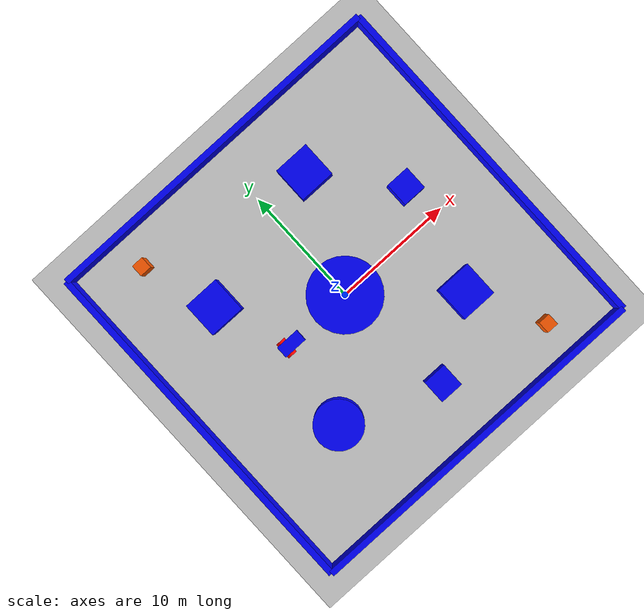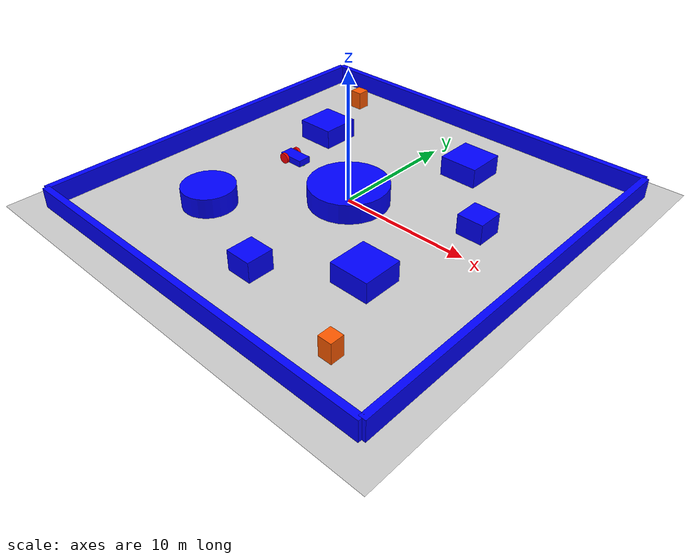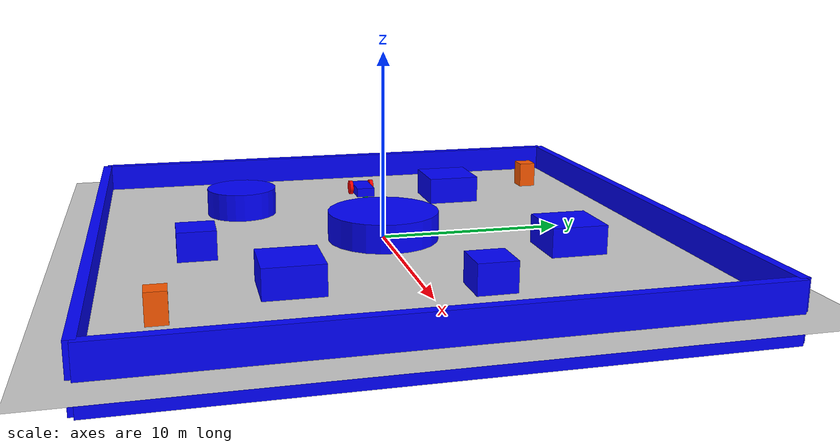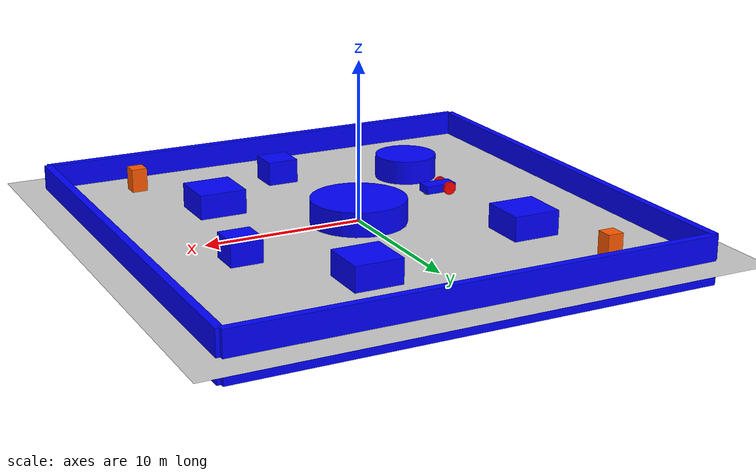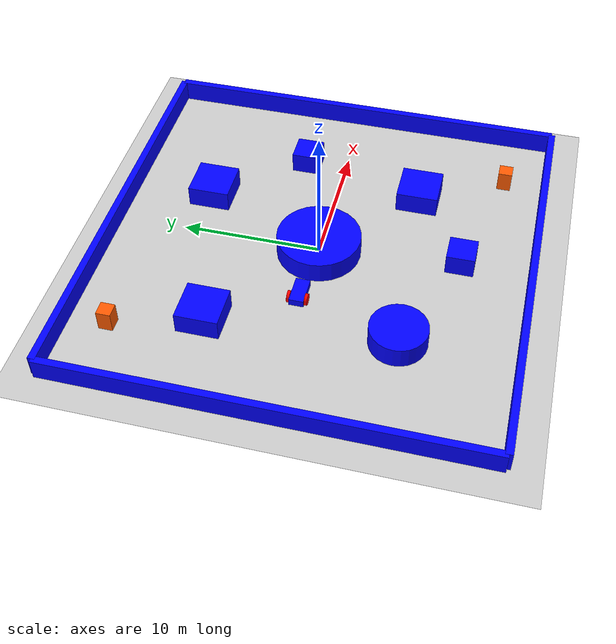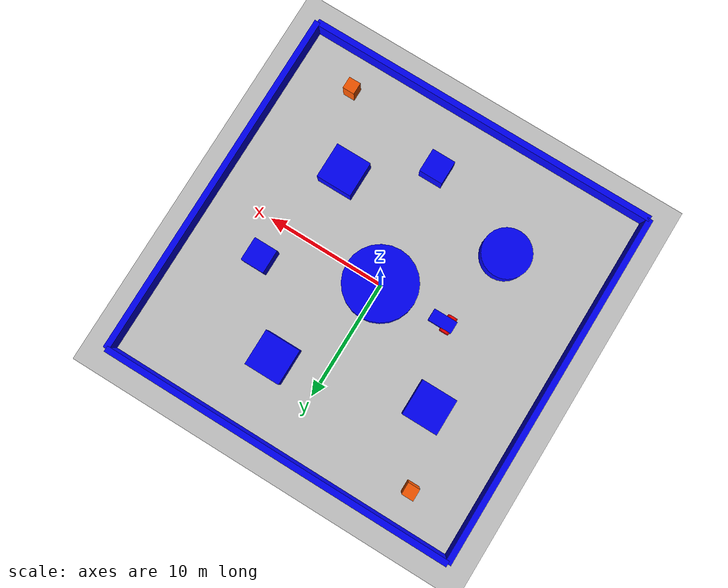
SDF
<sdf version="1.8">
 <world name="sim_world">
  <model name="environment">
   <static>true</static>
   <link name="ground">
    <collision name="collision"><geometry><plane><normal>0 0 1</normal></plane></geometry></collision>
    <visual name="visual">
     <geometry><plane><normal>0 0 1</normal><size>100 100</size></plane></geometry>
     <material>
      <ambient>0.8 0.8 0.8 1</ambient>
      <diffuse>0.8 0.8 0.8 1</diffuse>
      <specular>0.8 0.8 0.8 1</specular>
     </material>
    </visual>
   </link>
  </model>
  <model name="wall">
   <static>true</static>
   <pose>0 -15 0 0 0 0</pose>
   <link name="box">
    <visual name="visual">
     <geometry><box><size>30 0.5 3.0</size></box></geometry>
     <material>
      <ambient>0.0 0.0 1.0 1</ambient>
      <diffuse>0.0 0.0 1.0 1</diffuse>
      <specular>0.0 0.0 1.0 1</specular>
     </material>
    </visual>
    <collision name="collision"><geometry><box><size>30 0.5 3.0</size></box></geometry></collision>
   </link>
  </model>
  <model name="wall1">
   <static>true</static>
   <pose>0 15 0 0 0 0</pose>
   <link name="box">
    <visual name="visual">
     <geometry><box><size>30 0.5 3.0</size></box></geometry>
     <material>
      <ambient>0.0 0.0 1.0 1</ambient>
      <diffuse>0.0 0.0 1.0 1</diffuse>
      <specular>0.0 0.0 1.0 1</specular>
     </material>
    </visual>
    <collision name="collision"><geometry><box><size>30 0.5 3.0</size></box></geometry></collision>
   </link>
  </model>
  <model name="wall2">
   <static>true</static>
   <pose>15 0 0 0 0 0</pose>
   <link name="box">
    <visual name="visual">
     <geometry><box><size>0.5 30 3.0</size></box></geometry>
     <material>
      <ambient>0.0 0.0 1.0 1</ambient>
      <diffuse>0.0 0.0 1.0 1</diffuse>
      <specular>0.0 0.0 1.0 1</specular>
     </material>
    </visual>
    <collision name="collision"><geometry><box><size>0.5 30 3.0</size></box></geometry></collision>
   </link>
  </model>
  <model name="wall3">
   <static>true</static>
   <pose>-15 0 0 0 0 0</pose>
   <link name="box">
    <visual name="visual">
     <geometry><box><size>0.5 30 3.0</size></box></geometry>
     <material>
      <ambient>0.0 0.0 1.0 1</ambient>
      <diffuse>0.0 0.0 1.0 1</diffuse>
      <specular>0.0 0.0 1.0 1</specular>
     </material>
    </visual>
    <collision name="collision"><geometry><box><size>0.5 30 3.0</size></box></geometry></collision>
   </link>
  </model>
  <model name="box1">
   <static>true</static>
   <pose>7 -6 0 0 0 0</pose>
   <link name="box">
    <visual name="visual">
     <geometry><box><size>3 3 3.0</size></box></geometry>
     <material>
      <ambient>0.0 0.0 1.0 1</ambient>
      <diffuse>0.0 0.0 1.0 1</diffuse>
      <specular>0.0 0.0 1.0 1</specular>
     </material>
    </visual>
    <collision name="collision"><geometry><box><size>3 3 3.0</size></box></geometry></collision>
   </link>
  </model>
  <model name="box2">
   <static>true</static>
   <pose>-8 6 0 0 0 0</pose>
   <link name="box">
    <visual name="visual">
     <geometry><box><size>3 3 3.0</size></box></geometry>
     <material>
      <ambient>0.0 0.0 1.0 1</ambient>
      <diffuse>0.0 0.0 1.0 1</diffuse>
      <specular>0.0 0.0 1.0 1</specular>
     </material>
    </visual>
    <collision name="collision"><geometry><box><size>3 3 3.0</size></box></geometry></collision>
   </link>
  </model>
  <model name="box3">
   <static>true</static>
   <pose>4 9 0 0 0 0</pose>
   <link name="box">
    <visual name="visual">
     <geometry><box><size>3 3 3.0</size></box></geometry>
     <material>
      <ambient>0.0 0.0 1.0 1</ambient>
      <diffuse>0.0 0.0 1.0 1</diffuse>
      <specular>0.0 0.0 1.0 1</specular>
     </material>
    </visual>
    <collision name="collision"><geometry><box><size>3 3 3.0</size></box></geometry></collision>
   </link>
  </model>
  <model name="box4">
   <static>true</static>
   <pose>9 3 0 0 0 0</pose>
   <link name="box">
    <visual name="visual">
     <geometry><box><size>2 2 3.0</size></box></geometry>
     <material>
      <ambient>0.0 0.0 1.0 1</ambient>
      <diffuse>0.0 0.0 1.0 1</diffuse>
      <specular>0.0 0.0 1.0 1</specular>
     </material>
    </visual>
    <collision name="collision"><geometry><box><size>2 2 3.0</size></box></geometry></collision>
   </link>
  </model>
  <model name="box5">
   <static>true</static>
   <pose>1 -10 0 0 0 0</pose>
   <link name="box">
    <visual name="visual">
     <geometry><box><size>2 2 3.0</size></box></geometry>
     <material>
      <ambient>0.0 0.0 1.0 1</ambient>
      <diffuse>0.0 0.0 1.0 1</diffuse>
      <specular>0.0 0.0 1.0 1</specular>
     </material>
    </visual>
    <collision name="collision"><geometry><box><size>2 2 3.0</size></box></geometry></collision>
   </link>
  </model>
  <model name="cyl1">
   <static>true</static>
   <link name="box">
    <visual name="visual">
     <geometry><cylinder><radius>3</radius><length>3</length></cylinder></geometry>
     <material>
      <ambient>0.0 0.0 1.0 1</ambient>
      <diffuse>0.0 0.0 1.0 1</diffuse>
      <specular>0.0 0.0 1.0 1</specular>
     </material>
    </visual>
    <collision name="collision">
     <geometry><cylinder><radius>3</radius><length>3</length></cylinder></geometry>
    </collision>
   </link>
  </model>
  <model name="cyl2">
   <static>true</static>
   <pose>-7 -7 0 0 0 0</pose>
   <link name="box">
    <visual name="visual">
     <geometry><cylinder><radius>2</radius><length>3</length></cylinder></geometry>
     <material>
      <ambient>0.0 0.0 1.0 1</ambient>
      <diffuse>0.0 0.0 1.0 1</diffuse>
      <specular>0.0 0.0 1.0 1</specular>
     </material>
    </visual>
    <collision name="collision">
     <geometry><cylinder><radius>2</radius><length>3</length></cylinder></geometry>
    </collision>
   </link>
  </model>
  <model name="moving_obstacle_top" canonical_link="body">
   <static>false</static>
   <pose>-10 12 0.75 0 0 0</pose>
   <link name="body">
    <gravity>false</gravity>
    <inertial><mass>20</mass><inertia><ixx>5.4167</ixx><iyy>5.4167</iyy><izz>3.3333</izz></inertia></inertial>
    <visual name="visual">
     <geometry><box><size>1 1 1.5</size></box></geometry>
     <material><ambient>1 0.35 0 1</ambient><diffuse>1 0.35 0 1</diffuse></material>
    </visual>
    <collision name="collision"><geometry><box><size>1 1 1.5</size></box></geometry></collision>
   </link>
   <plugin filename="ignition-gazebo-velocity-control-system" name="ignition::gazebo::systems::VelocityControl">
    <topic>/moving_obstacle_top/cmd_vel</topic>
   </plugin>
   <plugin filename="libignition-gazebo-pose-publisher-system.so" name="ignition::gazebo::systems::PosePublisher">
    <topicName>/moving_obstacle_top/pose</topicName>
    <publish_model_pose>true</publish_model_pose>
    <publish_link_pose>true</publish_link_pose>
    <use_pose_vector_msg>true</use_pose_vector_msg>
   </plugin>
  </model>
  <model name="moving_obstacle_bottom" canonical_link="body">
   <static>false</static>
   <pose>10 -12 0.75 0 0 0</pose>
   <link name="body">
    <gravity>false</gravity>
    <inertial><mass>20</mass><inertia><ixx>5.4167</ixx><iyy>5.4167</iyy><izz>3.3333</izz></inertia></inertial>
    <visual name="visual">
     <geometry><box><size>1 1 1.5</size></box></geometry>
     <material><ambient>1 0.35 0 1</ambient><diffuse>1 0.35 0 1</diffuse></material>
    </visual>
    <collision name="collision"><geometry><box><size>1 1 1.5</size></box></geometry></collision>
   </link>
   <plugin filename="ignition-gazebo-velocity-control-system" name="ignition::gazebo::systems::VelocityControl">
    <topic>/moving_obstacle_bottom/cmd_vel</topic>
   </plugin>
   <plugin filename="libignition-gazebo-pose-publisher-system.so" name="ignition::gazebo::systems::PosePublisher">
    <topicName>/moving_obstacle_bottom/pose</topicName>
    <publish_model_pose>true</publish_model_pose>
    <publish_link_pose>true</publish_link_pose>
    <use_pose_vector_msg>true</use_pose_vector_msg>
   </plugin>
  </model>
  <model name="robot" canonical_link="chassis">
   <pose relative_to="world">-6 0 1 0 0 0</pose>
   <frame name="lidar_frame" attached_to="chassis"><pose>0.8 0 0.5 0 0 0</pose></frame>
   <frame name="camera_frame" attached_to="chassis"><pose>0.8 0 0.5 0 0 0</pose></frame>
   <frame name="camera_optical_frame" attached_to="camera_frame"><pose>0 0 0 -1.57 0 -1.57</pose></frame>
   <link name="chassis">
    <pose relative_to="__model__">0.5 0 0.4 0 0 0</pose>
    <inertial>
     <mass>1.14395</mass>
     <inertia>
      <ixx>0.126164</ixx>
      <ixy>0</ixy>
      <ixz>0</ixz>
      <iyy>0.416519</iyy>
      <iyz>0</iyz>
      <izz>0.481014</izz>
     </inertia>
    </inertial>
    <visual name="visual">
     <geometry><box><size>2.0 1.0 0.5</size></box></geometry>
     <material>
      <ambient>0.0 0.0 1.0 1</ambient>
      <diffuse>0.0 0.0 1.0 1</diffuse>
      <specular>0.0 0.0 1.0 1</specular>
     </material>
    </visual>
    <collision name="collision"><geometry><box><size>2.0 1.0 0.5</size></box></geometry></collision>
    <sensor name="imu_sensor" type="imu">
     <always_on>1</always_on>
     <update_rate>1</update_rate>
     <visualize>true</visualize>
     <topic>imu</topic>
    </sensor>
    <sensor name="lidar" type="gpu_lidar">
     <pose relative_to="lidar_frame">0 0 0 0 0 0</pose>
     <topic>lidar</topic>
     <update_rate>10</update_rate>
     <ray>
      <scan>
       <horizontal>
        <samples>256</samples>
        <resolution>1</resolution>
        <min_angle>-3.14159</min_angle>
        <max_angle>3.14159</max_angle>
       </horizontal>
       <vertical>
        <samples>1</samples>
        <resolution>1</resolution>
        <min_angle>0</min_angle>
        <max_angle>0</max_angle>
       </vertical>
      </scan>
      <range><min>0.08</min><max>20.0</max><resolution>0.01</resolution></range>
     </ray>
     <alwaysOn>1</alwaysOn>
     <visualize>true</visualize>
    </sensor>
    <sensor name="camera" type="camera">
     <pose relative_to="camera_frame">0 0 0 0 0 0</pose>
     <camera>
      <horizontal_fov>1.047</horizontal_fov>
      <image><width>320</width><height>240</height></image>
      <clip><near>0.1</near><far>100</far></clip>
     </camera>
     <always_on>1</always_on>
     <update_rate>30</update_rate>
     <visualize>true</visualize>
     <topic>camera</topic>
    </sensor>
   </link>
   <link name="left_wheel">
    <pose relative_to="chassis">-0.5 0.6 0 -1.5707 0 0</pose>
    <inertial>
     <mass>2</mass>
     <inertia><ixx>0.145833</ixx><ixy>0</ixy><ixz>0</ixz><iyy>0.145833</iyy><iyz>0</iyz><izz>0.125</izz></inertia>
    </inertial>
    <visual name="visual">
     <geometry><cylinder><radius>0.4</radius><length>0.2</length></cylinder></geometry>
     <material>
      <ambient>1.0 0.0 0.0 1</ambient>
      <diffuse>1.0 0.0 0.0 1</diffuse>
      <specular>1.0 0.0 0.0 1</specular>
     </material>
    </visual>
    <collision name="collision">
     <geometry><cylinder><radius>0.4</radius><length>0.2</length></cylinder></geometry>
    </collision>
   </link>
   <link name="right_wheel">
    <pose relative_to="chassis">-0.5 -0.6 0 -1.5707 0 0</pose>
    <inertial>
     <mass>1</mass>
     <inertia><ixx>0.145833</ixx><ixy>0</ixy><ixz>0</ixz><iyy>0.145833</iyy><iyz>0</iyz><izz>0.125</izz></inertia>
    </inertial>
    <visual name="visual">
     <geometry><cylinder><radius>0.4</radius><length>0.2</length></cylinder></geometry>
     <material>
      <ambient>1.0 0.0 0.0 1</ambient>
      <diffuse>1.0 0.0 0.0 1</diffuse>
      <specular>1.0 0.0 0.0 1</specular>
     </material>
    </visual>
    <collision name="collision">
     <geometry><cylinder><radius>0.4</radius><length>0.2</length></cylinder></geometry>
    </collision>
   </link>
   <frame name="caster_frame" attached_to="chassis"><pose>0.8 0 -0.2 0 0 0</pose></frame>
   <link name="caster">
    <pose relative_to="caster_frame"/>
    <inertial>
     <mass>1</mass>
     <inertia><ixx>0.1</ixx><ixy>0</ixy><ixz>0</ixz><iyy>0.1</iyy><iyz>0</iyz><izz>0.1</izz></inertia>
    </inertial>
    <visual name="visual">
     <geometry><sphere><radius>0.2</radius></sphere></geometry>
     <material>
      <ambient>0.0 1 0.0 1</ambient>
      <diffuse>0.0 1 0.0 1</diffuse>
      <specular>0.0 1 0.0 1</specular>
     </material>
    </visual>
    <collision name="collision"><geometry><sphere><radius>0.2</radius></sphere></geometry></collision>
   </link>
   <joint name="left_wheel_joint" type="revolute">
    <pose relative_to="left_wheel"/>
    <parent>chassis</parent>
    <child>left_wheel</child>
    <axis>
     <xyz expressed_in="__model__">0 1 0</xyz>
     <limit><lower>-1.79769e+308</lower><upper>1.79769e+308</upper></limit>
    </axis>
   </joint>
   <joint name="right_wheel_joint" type="revolute">
    <pose relative_to="right_wheel"/>
    <parent>chassis</parent>
    <child>right_wheel</child>
    <axis>
     <xyz expressed_in="__model__">0 1 0</xyz>
     <limit><lower>-1.79769e+308</lower><upper>1.79769e+308</upper></limit>
    </axis>
   </joint>
   <joint name="caster_wheel" type="ball"><parent>chassis</parent><child>caster</child></joint>
   <plugin filename="ignition-gazebo-diff-drive-system" name="ignition::gazebo::systems::DiffDrive">
    <left_joint>left_wheel_joint</left_joint>
    <right_joint>right_wheel_joint</right_joint>
    <wheel_separation>1.2</wheel_separation>
    <wheel_radius>0.4</wheel_radius>
    <odom_publish_frequency>1</odom_publish_frequency>
    <topic>cmd_vel</topic>
   </plugin>
   <plugin filename="libignition-gazebo-pose-publisher-system.so" name="ignition::gazebo::systems::PosePublisher">
    <topicName>tf</topicName>
    <publish_link_pose>true</publish_link_pose>
    <publish_sensor_pose>true</publish_sensor_pose>
    <publish_collision_pose>false</publish_collision_pose>
    <publish_visual_pose>false</publish_visual_pose>
    <publish_nested_model_pose>true</publish_nested_model_pose>
    <use_pose_vector_msg>true</use_pose_vector_msg>
    <static_publisher>true</static_publisher>
    <static_update_frequency>1000</static_update_frequency>
   </plugin>
  </model>
 </world>
</sdf>
